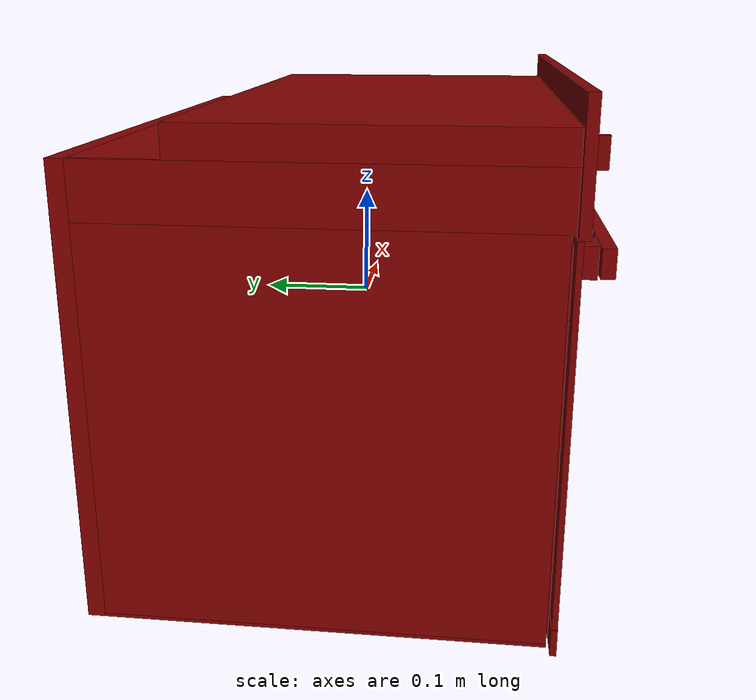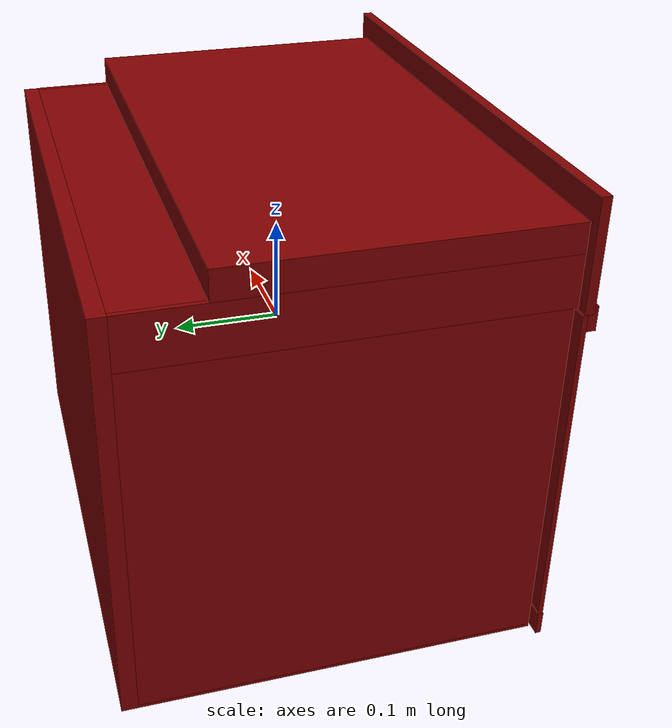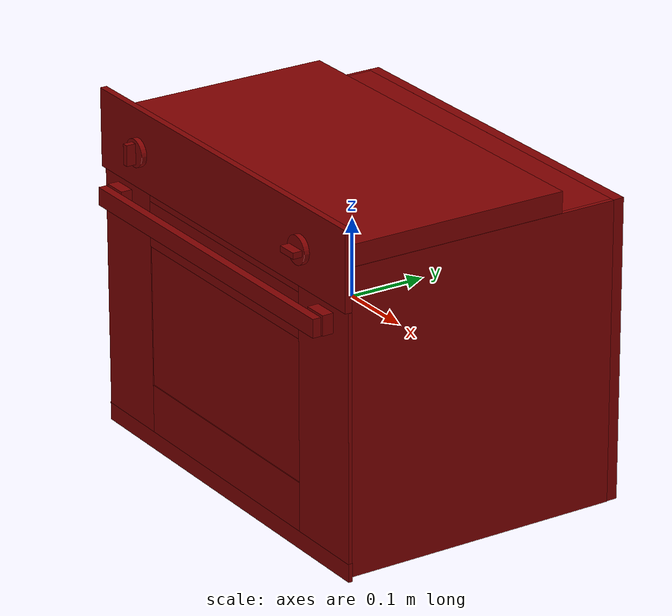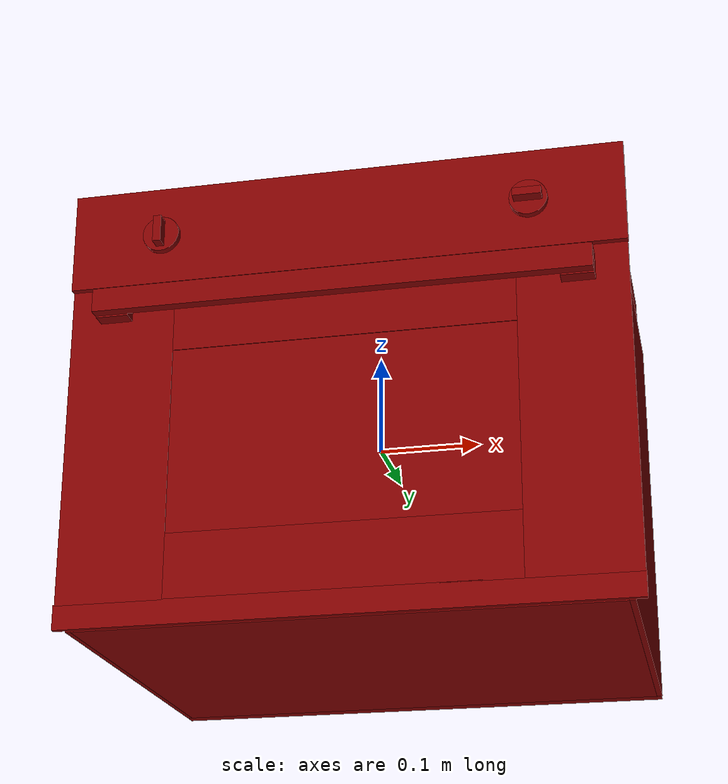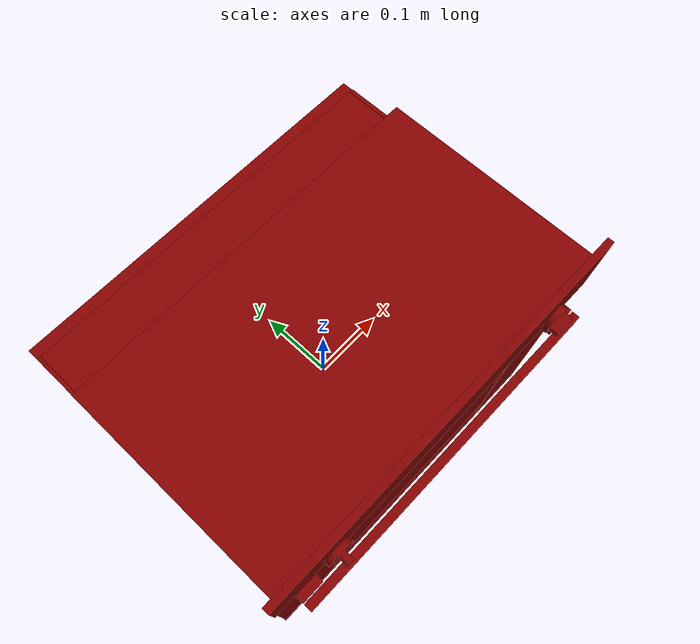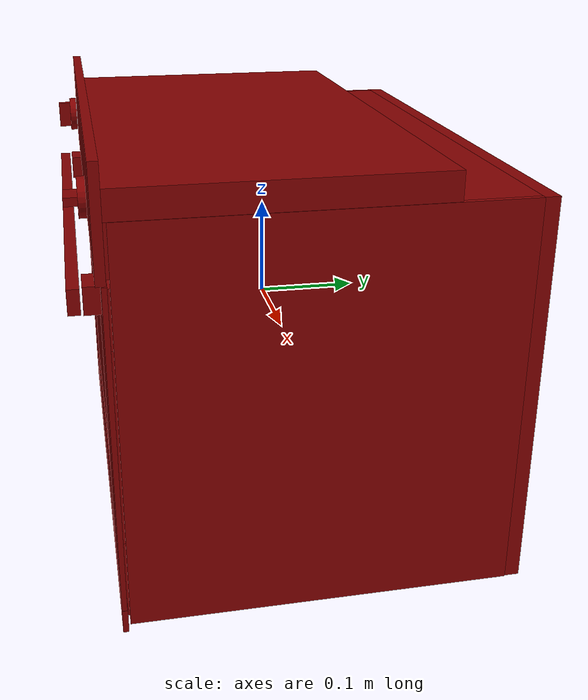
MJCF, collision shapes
<?xml version='1.0' encoding='UTF-8'?>
<mujoco model="model">
  <option timestep="0.002" gravity="0.0 0.0 -9.81"/>
  <compiler angle="radian"/>
  <asset>
    <mesh file="visuals/Door.obj" name="door_vis"/>
    <mesh file="visuals/door_Clear.obj" name="door_Clear_vis"/>
    <mesh file="visuals/knob_temp.obj" name="knob_temp_vis"/>
    <mesh file="visuals/knob_time.obj" name="knob_time_vis"/>
    <mesh file="visuals/Body001.obj" name="Body001_vis"/>
    <mesh file="visuals/rack0.obj" name="rack0_vis"/>
    <mesh file="visuals/rack1.obj" name="rack1_vis"/>
    <texture file="visuals/T_BC001.png" name="Body001_material" type="2d"/>
    <material name="Body001_material" rgba="1 1 1 1.0" texture="Body001_material" shininess="2" specular="2"/>
    <texture file="visuals/T_BC001.png" name="door_material" type="2d"/>
    <material name="door_material" rgba="1 1 1 1.0" texture="door_material" shininess="2" specular="2"/>
    <texture file="visuals/T_BC001.png" name="door_Clear_material" type="2d"/>
    <material name="door_Clear_material" rgba="1 1 1 0.800000011920929" texture="door_Clear_material" shininess="0.4472135901451111" specular="0.3103448502657381"/>
    <texture file="visuals/T_BC001.png" name="knob_temp_material" type="2d"/>
    <material name="knob_temp_material" rgba="1 1 1 1.0" texture="knob_temp_material" shininess="2" specular="2"/>
    <texture file="visuals/T_BC001.png" name="knob_time_material" type="2d"/>
    <material name="knob_time_material" rgba="1 1 1 1.0" texture="knob_time_material" shininess="2" specular="2"/>
    <texture file="visuals/T_BC001.png" name="rack0_material" type="2d"/>
    <material name="rack0_material" rgba="1 1 1 1.0" texture="rack0_material" shininess="10" specular="10"/>
    <texture file="visuals/T_BC001.png" name="rack1_material" type="2d"/>
    <material name="rack1_material" rgba="1 1 1 1.0" texture="rack1_material" shininess="10" specular="10"/>
  </asset>
  <default>
    <default class="visual">
      <geom conaffinity="0" contype="0" group="1" type="mesh"/>
    </default>
    <default class="collision">
      <geom group="0" rgba="0.5 0 0 0.5"/>
    </default>
    <default class="spawn">
      <geom group="0" rgba="1 1 1 0.5" contype="0" conaffinity="0"/>
      <site group="0" rgba="1 1 1 0.5"/>
    </default>
    <default class="region">
      <geom group="1" conaffinity="0" contype="0" rgba="0 1 0 0"/>
    </default>
  </default>
  <worldbody>
    <body>
      <body name="object">
        <geom mesh="Body001_vis" type="mesh" solimp="0.998 0.998 0.001" solref="0.001 1" friction="0.95 0.3 0.1" class="visual" material="Body001_material"/>
        <geom class="collision" type="box" pos="-0.00046829349594190717 0.2005206197500229 -0.025825874879956245" size="0.256059855222702 0.007349841296672821 0.19311775267124176" quat="1.0 0.0 0.0 0.0"/>
        <geom class="collision" type="box" pos="-0.25421538949012756 0.010213014669716358 -0.02582590840756893" size="0.0023037900682538748 0.18296247720718384 0.19311769306659698" quat="1.0 0.0 0.0 0.0"/>
        <geom class="collision" type="box" pos="0.25374704599380493 0.010213014669716358 -0.025825949385762215" size="0.0027721787337213755 0.18296238780021667 0.1931176483631134" quat="7.549790126404332e-08 1.0 0.0 0.0"/>
        <geom class="collision" type="box" pos="-0.00046829349594190717 -0.02791687101125717 0.18077625334262848" size="0.25605934858322144 0.14838284254074097 0.0134894335642457" quat="1.0 0.0 0.0 0.0"/>
        <geom class="collision" type="box" pos="-0.00046829349594190717 0.008437730371952057 0.1435135006904602" size="0.2560591995716095 0.18473736941814423 0.023774899542331696" quat="1.0 0.0 0.0 0.0"/>
        <geom class="collision" type="box" pos="-0.00046829349594190717 0.01021295040845871 -0.2174094021320343" size="0.25605902075767517 0.1829620599746704 0.0015341477701440454" quat="1.0 0.0 0.0 0.0"/>
        <geom class="collision" type="box" pos="3.81313896014035e-08 -0.18041658401489258 0.16862420737743378" size="0.2670661211013794 0.004405537154525518 0.05031941086053848" quat="1.0 0.0 0.0 0.0"/>
        <geom class="collision" type="box" pos="-0.24489833414554596 0.015095271170139313 -0.06755589693784714" size="0.002303782384842634 0.13677124679088593 0.13658584654331207" quat="1.0 0.0 0.0 0.0"/>
        <geom class="collision" type="box" pos="-0.23025478422641754 0.015095271170139313 0.03355073556303978" size="0.012340073473751545 0.13677115738391876 0.0022602395620197058" quat="1.0 0.0 0.0 0.0"/>
        <geom class="collision" type="box" pos="-0.23011556267738342 0.015095271170139313 0.06282439827919006" size="0.012479296885430813 0.1367710828781128 0.0022602383978664875" quat="1.0 0.0 0.0 0.0"/>
        <geom class="collision" type="box" pos="-0.21985091269016266 0.015239796601235867 0.057280756533145905" size="0.0022144108079373837 0.1252875179052353 0.0032834643498063087" quat="1.0 0.0 0.0 0.0"/>
        <geom class="collision" type="box" pos="-0.21985091269016266 0.015239796601235867 -0.0016794353723526" size="0.0022144108079373837 0.12528742849826813 0.0032834643498063087" quat="1.0 0.0 0.0 0.0"/>
        <geom class="collision" type="box" pos="-0.23486432433128357 0.015095271170139313 0.003864206373691559" size="0.007730527315288782 0.1367708295583725 0.0022602344397455454" quat="1.0 0.0 0.0 0.0"/>
        <geom class="collision" type="box" pos="-0.23011556267738342 0.015095271170139313 -0.07317391782999039" size="0.012479276396334171 0.13677075505256653 0.002260233275592327" quat="1.0 0.0 0.0 0.0"/>
        <geom class="collision" type="box" pos="-0.21985091269016266 0.015239796601235867 -0.07871755957603455" size="0.0022144108079373837 0.12528714537620544 0.0032834643498063087" quat="1.0 0.0 0.0 0.0"/>
        <geom class="collision" type="box" pos="-0.21985091269016266 0.015239796601235867 -0.1569279581308365" size="0.0022144108079373837 0.12528705596923828 0.0032834643498063087" quat="1.0 0.0 0.0 0.0"/>
        <geom class="collision" type="box" pos="-0.23011556267738342 0.015095271170139313 -0.15138432383537292" size="0.012479260563850403 0.13677050173282623 0.002260229317471385" quat="1.0 0.0 0.0 0.0"/>
        <geom class="collision" type="box" pos="-0.23025478422641754 0.015095271170139313 -0.03170866519212723" size="0.012340026907622814 0.13677041232585907 0.002260227920487523" quat="1.0 0.0 0.0 0.0"/>
        <geom class="collision" type="box" pos="-0.23025478422641754 0.015095271170139313 -0.10885393619537354" size="0.012340021319687366 0.1367703378200531 0.002260226756334305" quat="1.0 0.0 0.0 0.0"/>
        <geom class="collision" type="box" pos="0.22936666011810303 0.015095271170139313 -0.10885393619537354" size="0.012340015731751919 0.13677024841308594 0.002260225359350443" quat="7.549790126404332e-08 1.0 0.0 0.0"/>
        <geom class="collision" type="box" pos="0.22936666011810303 0.015095271170139313 -0.03170866519212723" size="0.012340011075139046 0.13677015900611877 0.002260223962366581" quat="7.549790126404332e-08 1.0 0.0 0.0"/>
        <geom class="collision" type="box" pos="0.2294616848230362 0.015095271170139313 -0.15138432383537292" size="0.012479234486818314 0.1367700845003128 0.0022602227982133627" quat="7.549790126404332e-08 1.0 0.0 0.0"/>
        <geom class="collision" type="box" pos="0.21919704973697662 0.015239796601235867 -0.1569279581308365" size="0.0022144108079373837 0.12528640031814575 0.0032834643498063087" quat="7.549790126404332e-08 1.0 0.0 0.0"/>
        <geom class="collision" type="box" pos="0.21919704973697662 0.015239796601235867 -0.07871755957603455" size="0.0022144108079373837 0.1252863109111786 0.0032834643498063087" quat="7.549790126404332e-08 1.0 0.0 0.0"/>
        <geom class="collision" type="box" pos="0.2294616848230362 0.015095271170139313 -0.07317391782999039" size="0.012479218654334545 0.1367698311805725 0.0022602188400924206" quat="7.549790126404332e-08 1.0 0.0 0.0"/>
        <geom class="collision" type="box" pos="0.23315861821174622 0.015095271170139313 0.003864206373691559" size="0.008782273158431053 0.13676975667476654 0.0022602176759392023" quat="7.549790126404332e-08 1.0 0.0 0.0"/>
        <geom class="collision" type="box" pos="0.21919704973697662 0.015239796601235867 -0.0016794353723526" size="0.0022144108079373837 0.1252860277891159 0.0032834643498063087" quat="7.549790126404332e-08 1.0 0.0 0.0"/>
        <geom class="collision" type="box" pos="0.21919704973697662 0.015239796601235867 0.057280756533145905" size="0.0022144108079373837 0.12528593838214874 0.0032834643498063087" quat="7.549790126404332e-08 1.0 0.0 0.0"/>
        <geom class="collision" type="box" pos="0.2294616848230362 0.015095271170139313 0.06282439827919006" size="0.012479198165237904 0.13676950335502625 0.00226021371781826" quat="7.549790126404332e-08 1.0 0.0 0.0"/>
        <geom class="collision" type="box" pos="0.22936666011810303 0.015095271170139313 0.03355073183774948" size="0.012339964509010315 0.13676941394805908 0.0022602123208343983" quat="7.549790126404332e-08 1.0 0.0 0.0"/>
        <geom class="collision" type="box" pos="-0.0007408249657601118 -0.11970668286085129 0.08705804497003555" size="0.2461453229188919 0.001712480210699141 0.008460307493805885" quat="1.0 0.0 0.0 0.0"/>
        <geom class="collision" type="box" pos="-0.0007408249657601118 0.1491161733865738 0.08705804497003555" size="0.24614514410495758 0.001712478930130601 0.008460302837193012" quat="1.0 0.0 0.0 0.0"/>
        <geom class="collision" type="box" pos="0.24416705965995789 0.015095271170139313 -0.06755589693784714" size="0.0023037497885525227 0.1367691606283188 0.13658377528190613" quat="1.0 0.0 0.0 0.0"/>
        <body name="door">
          <joint axis="1.0 0.0 0.0" pos="-0.0007308602798730135 -0.17913802911061794 -0.21642406657338142" limited="true" name="door_joint" range="0.0 1.15" type="hinge" damping="1" frictionloss="1" armature="1" stiffness="2"/>
          <geom mesh="door_vis" type="mesh" solimp="0.998 0.998 0.001" solref="0.001 1" friction="0.95 0.3 0.1" class="visual" material="door_material"/>
          <geom class="collision" type="box" pos="-0.0007308602798730135 -0.17041710019111633 -0.042397212237119675" size="0.16379055380821228 0.005005007144063711 0.09075787663459778" quat="7.549790126404332e-08 1.0 0.0 0.0"/>
          <geom class="collision" type="box" pos="-0.2209523469209671 -0.1874769926071167 0.09478536993265152" size="0.01554601825773716 0.007346408441662788 0.012586256489157677" quat="1.0 0.0 0.0 0.0"/>
          <geom class="collision" type="box" pos="0.22039441764354706 -0.1874769926071167 0.09478536993265152" size="0.015546008013188839 0.007346404250711203 0.012586250901222229" quat="7.549790126404332e-08 1.0 0.0 0.0"/>
          <geom class="collision" type="box" pos="-0.21486614644527435 -0.17779771983623505 -0.03916945308446884" size="0.05095848813652992 0.002377778524532914 0.15656030178070068" quat="1.0 0.0 0.0 0.0"/>
          <geom class="collision" type="box" pos="0.2148474007844925 -0.17779771983623505 -0.03916945308446884" size="0.05178803205490112 0.002377777360379696 0.15656021237373352" quat="7.549790126404332e-08 1.0 0.0 0.0"/>
          <geom class="collision" type="box" pos="-0.00042415113421157 -0.17862333357334137 0.0828753113746643" size="0.16348442435264587 0.0015519047155976295 0.03451484814286232" quat="7.549790126404332e-08 1.0 0.0 0.0"/>
          <geom class="collision" type="box" pos="-0.00042415113421157 -0.17862333357334137 -0.16444197297096252" size="0.1634843349456787 0.0015519041335210204 0.031287096440792084" quat="7.549790126404332e-08 1.0 0.0 0.0"/>
          <geom class="collision" type="box" pos="0.0017530148616060615 -0.16886600852012634 -0.17513583600521088" size="0.24711383879184723 0.008217371068894863 0.03947332128882408" quat="7.549790126404332e-08 1.0 0.0 0.0"/>
          <geom class="collision" type="box" pos="0.0017530148616060615 -0.16886600852012634 0.08157838881015778" size="0.2471136748790741 0.008217365480959415 0.02765432745218277" quat="7.549790126404332e-08 1.0 0.0 0.0"/>
          <geom class="collision" type="box" pos="-0.20674774050712585 -0.16886600852012634 -0.04086923599243164" size="0.03861210495233536 0.008217359893023968 0.09479359537363052" quat="7.549790126404332e-08 1.0 0.0 0.0"/>
          <geom class="collision" type="box" pos="0.20991204679012299 -0.16886600852012634 -0.04086923599243164" size="0.03895382955670357 0.008217355236411095 0.09479355812072754" quat="1.0 0.0 0.0 0.0"/>
          <geom class="collision" type="box" pos="-8.66566551849246e-08 -0.17756953835487366 -0.20667414367198944" size="0.2670663893222809 0.002605702495202422 0.011747722513973713" quat="7.549790126404332e-08 1.0 0.0 0.0"/>
          <geom class="collision" type="box" pos="-0.00042415113421157 -0.17779771983623505 0.11199759691953659" size="0.16348415613174438 0.002377772703766823 0.005392839200794697" quat="7.549790126404332e-08 1.0 0.0 0.0"/>
          <geom class="collision" type="box" pos="-0.00027896458050236106 -0.20239976048469543 0.09439407289028168" size="0.23622146248817444 0.00541511969640851 0.011590867303311825" quat="1.0 0.0 0.0 0.0" name="door_handle_main"/>
          <geom class="collision" type="box" pos="-0.0007308602798730135 -0.17778855562210083 -0.054407332092523575" size="0.26282498240470886 0.0013494734885171056 0.16201673448085785" quat="7.549790126404332e-08 1.0 0.0 0.0" name="door_main"/>
          <body name="door_Clear">
            <geom mesh="door_Clear_vis" type="mesh" solimp="0.998 0.998 0.001" solref="0.001 1" friction="0.95 0.3 0.1" class="visual" material="door_Clear_material"/>
            <geom class="collision" type="box" pos="-0.0007308602798730135 -0.17041710019111633 -0.042397212237119675" size="0.16379055380821228 0.005005007144063711 0.09075787663459778" quat="7.549790126404332e-08 1.0 0.0 0.0"/>
          </body>
        </body>
        <body name="knob_temp">
          <joint axis="0.0 1.0 0.0" pos="0.17804408073425293 -0.19469143450260162 0.1664111316204071" limited="true" name="knob_temp_joint" range="0.0 3.2288591161895095" type="hinge" damping="0.05" armature="1" frictionloss="0.75"/>
          <geom mesh="knob_temp_vis" type="mesh" solimp="0.998 0.998 0.001" solref="0.001 1" friction="0.95 0.3 0.1" class="visual" material="knob_temp_material"/>
          <geom class="collision" type="box" pos="0.17804408073425293 -0.19909770786762238 0.1664111316204071" size="0.0038462956435978413 0.006156355142593384 0.013284401968121529" quat="0.70710688829422 -4.7503021960437763e-08 -0.7071066498756409 -4.750300774958305e-08" name="knob_temp_main" friction="100 0.5 0.01"/>
          <geom class="collision" type="cylinder" pos="0.17804408073425293 -0.18955956399440765 0.1664111316204071" size="0.017870647832751274 0.003489958355203271" quat="0.7071068286895752 0.7071067690849304 -1.5700924318127872e-16 -5.9269340452702814e-24" friction="100 0.5 0.01"/>
        </body>
        <body name="knob_time">
          <joint axis="0.0 1.0 0.0" pos="-0.17671698331832886 -0.19469144940376282 0.1664111316204071" limited="true" name="knob_time_joint" range="0.0 3.9269908169872414" type="hinge" damping="0.05" armature="1" frictionloss="0.75"/>
          <geom mesh="knob_time_vis" type="mesh" solimp="0.998 0.998 0.001" solref="0.001 1" friction="0.95 0.3 0.1" class="visual" material="knob_time_material"/>
          <geom class="collision" type="box" pos="-0.17671698331832886 -0.19909770786762238 0.1664111316204071" size="0.0038462956435978413 0.006156355142593384 0.013284401968121529" quat="1.0 0.0 0.0 0.0" name="knob_time_main" friction="100 0.5 0.01"/>
          <geom class="collision" type="cylinder" pos="-0.17671698331832886 -0.18955956399440765 0.1664111316204071" size="0.017870647832751274 0.003489958355203271" quat="0.7071068286895752 0.7071067690849304 -1.5700924318127872e-16 -5.9269340452702814e-24" friction="100 0.5 0.01"/>
        </body>
        <body name="rack0">
          <geom class="region" name="reg_rack0" type="box" pos="-0.0003506019711494446 0.0125967375934124 -0.05130647635087371" size="0.21210857278108597 0.10987688770890236 0.043489873711019755"/>
          <joint axis="0.0 -1.0 0.0" pos="-0.0002162456512451172 0.020030558109283447 -0.1143985241651535" limited="true" name="rack0_joint" range="0.0 0.22" type="slide" damping="1" frictionloss="1" armature=".01" stiffness="0.05"/>
          <geom mesh="rack0_vis" type="mesh" solimp="0.998 0.998 0.001" solref="0.001 1" friction="0.95 0.3 0.1" class="visual" material="rack0_material"/>
          <geom class="collision" type="box" pos="-0.00021624470537062734 0.02001594379544258 -0.10282188653945923" size="0.23169156908988953 0.12696810066699982 0.003432618221268058" quat="7.549790126404332e-08 1.0 0.0 0.0"/>
          <geom class="collision" type="box" pos="-0.1815015971660614 -0.09620523452758789 -0.11795758455991745" size="0.01698022149503231 0.00078874226892367 0.011702910996973515" quat="7.549790126404332e-08 1.0 0.0 0.0"/>
          <geom class="collision" type="box" pos="0.18150168657302856 -0.09620523452758789 -0.11795758455991745" size="0.016980227082967758 0.0007887425599619746 0.011702919378876686" quat="1.0 0.0 0.0 0.0"/>
        </body>
        <body name="rack1">
          <geom class="region" name="reg_rack1" type="box" pos="-0.00300009548664093 0.014290571212768555 0.05887548648752272" size="0.20149133896827698 0.11723288691043854 0.05258922798000276"/>
          <joint axis="0.0 -1.0 0.0" pos="-0.0023457175120711327 0.015031401999294758 0.004589640535414219" limited="true" name="rack1_joint" range="0.0 0.22" type="slide" damping="1" frictionloss="1" armature=".01" stiffness="0.05"/>
          <geom mesh="rack1_vis" type="mesh" solimp="0.998 0.998 0.001" solref="0.001 1" friction="0.95 0.3 0.1" class="visual" material="rack1_material"/>
          <geom class="collision" type="box" pos="-0.22325891256332397 0.015038888901472092 0.00993550568819046" size="0.012789062224328518 0.13341768085956573 0.0020891758613288403" quat="1.0 0.0 0.0 0.0"/>
          <geom class="collision" type="box" pos="0.21819430589675903 0.015038888901472092 0.00993550568819046" size="0.01278905663639307 0.13341759145259857 0.0020891744643449783" quat="7.549790126404332e-08 1.0 0.0 0.0"/>
          <geom class="collision" type="box" pos="-0.002532296348363161 0.14231742918491364 0.00993550568819046" size="0.2079392820596695 0.006137415301054716 0.0020891730673611164" quat="1.0 0.0 0.0 0.0"/>
          <geom class="collision" type="box" pos="-0.002532296348363161 -0.11310906708240509 0.00993550568819046" size="0.20793920755386353 0.00526798190549016 0.002089171903207898" quat="1.0 0.0 0.0 0.0"/>
          <geom class="collision" type="box" pos="-0.002532296348363161 -0.1103062555193901 0.0034059183672070503" size="0.20793767273426056 0.008320068940520287 0.002089147688820958" quat="0.9238795042037964 -0.3826834559440613 0.0 0.0"/>
          <geom class="collision" type="box" pos="-0.002532296348363161 0.140052929520607 0.0034059183672070503" size="0.20793767273426056 0.008320068940520287 0.002089147688820958" quat="0.9238795042037964 0.3826834559440613 0.0 0.0"/>
          <geom class="collision" type="box" pos="0.20456074178218842 0.015038888901472092 0.002808835357427597" size="0.009755833074450493 0.12411753833293915 0.002089147688820958" quat="0.9762960076332092 0.0 -0.2164396494626999 0.0"/>
          <geom class="collision" type="box" pos="-0.21206749975681305 0.015038888901472092 0.002808835357427597" size="0.009755833074450493 0.12411753833293915 0.002089147688820958" quat="0.9762960076332092 0.0 0.2164396494626999 0.0"/>
          <geom class="collision" type="box" pos="2.9802322387695312e-08 0.015038888901472092 -0.00018277857452630997" size="0.2037879377603531 0.12087789177894592 0.0020891253370791674" quat="7.549790126404332e-08 1.0 0.0 0.0"/>
        </body>
        <geom class="region" name="reg_int" type="box" pos="-0.0005920231342315674 0.01616302877664566 -0.05023734271526337" size="0.24715579843521118 0.17218487507104874 0.16116195714473724"/>
        <geom class="region" name="reg_main" type="box" pos="0.0 0.011524051427841187 0.0" size="0.2680661211013794 0.19734610414505005 0.21994362568855286"/>
      </body>
    </body>
  </worldbody>
  <actuator>
    <motor name="door_joint_actuator" joint="door_joint" gear="50"/>
    <motor name="knob_temp_joint_actuator" joint="knob_temp_joint" gear="50"/>
    <motor name="knob_time_joint_actuator" joint="knob_time_joint" gear="50"/>
    <motor name="rack0_joint_actuator" joint="rack0_joint" gear="50"/>
    <motor name="rack1_joint_actuator" joint="rack1_joint" gear="50"/>
  </actuator>
</mujoco>
